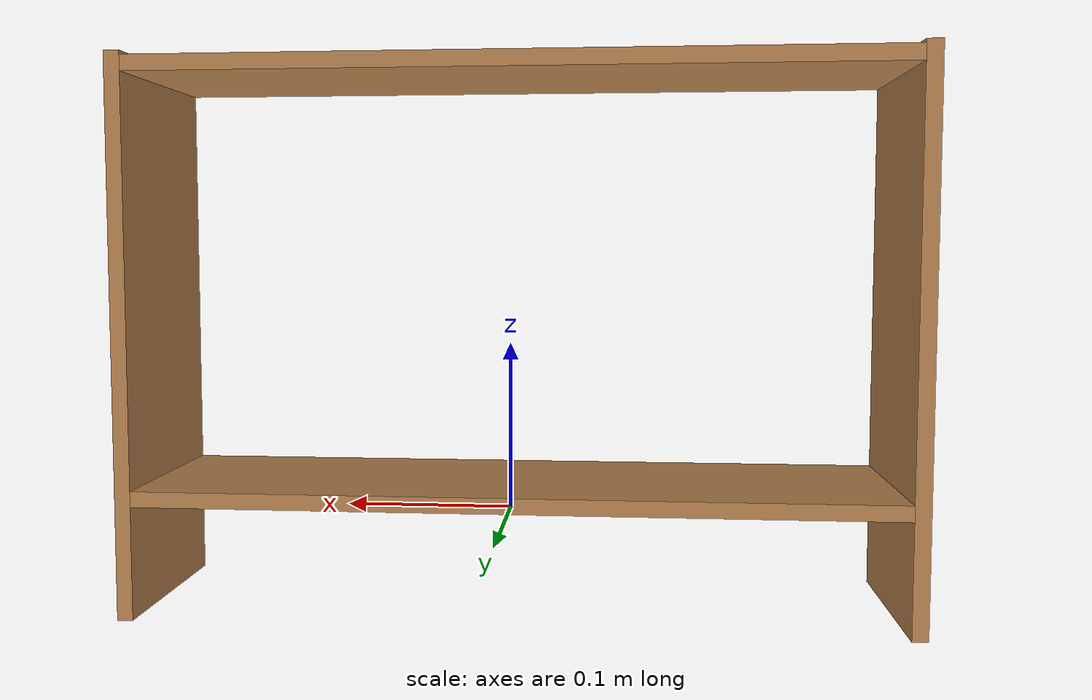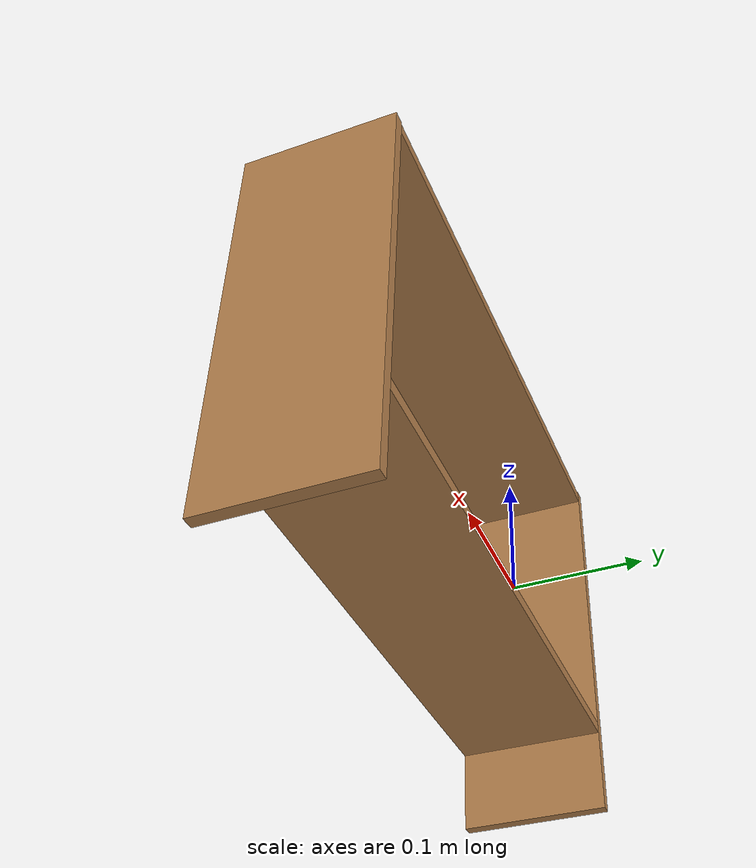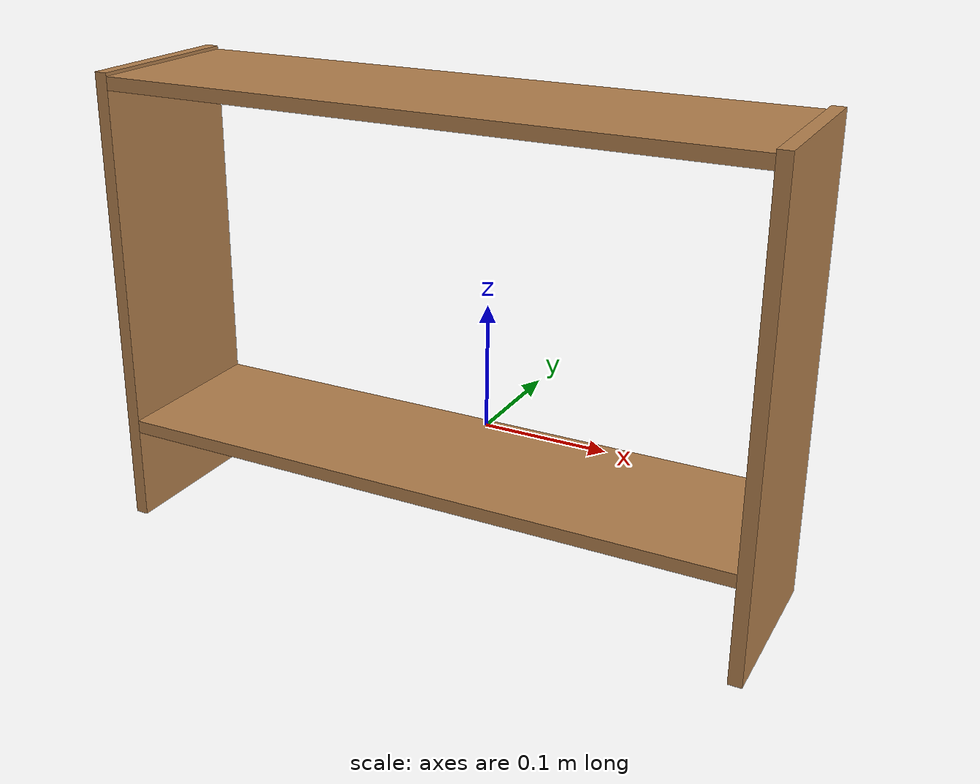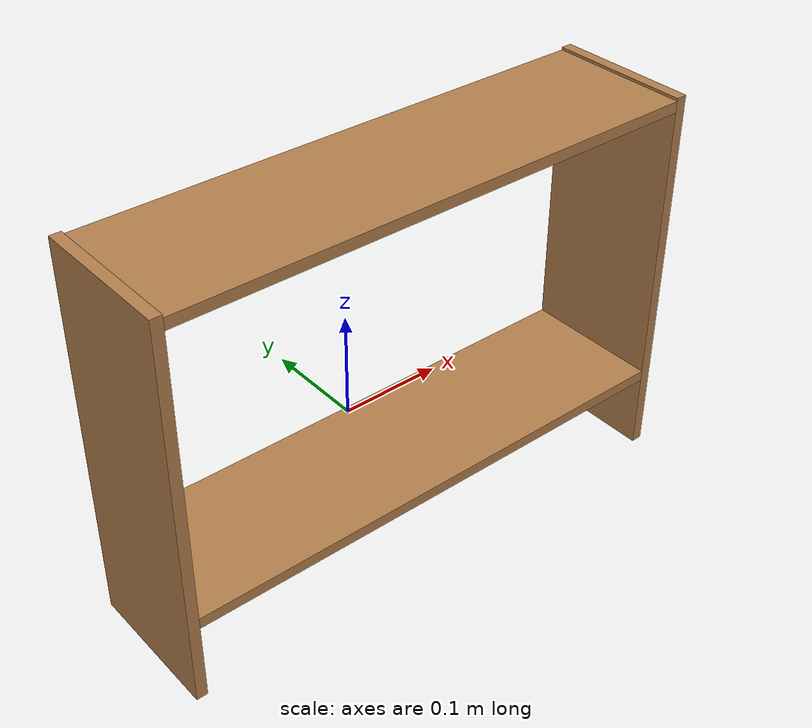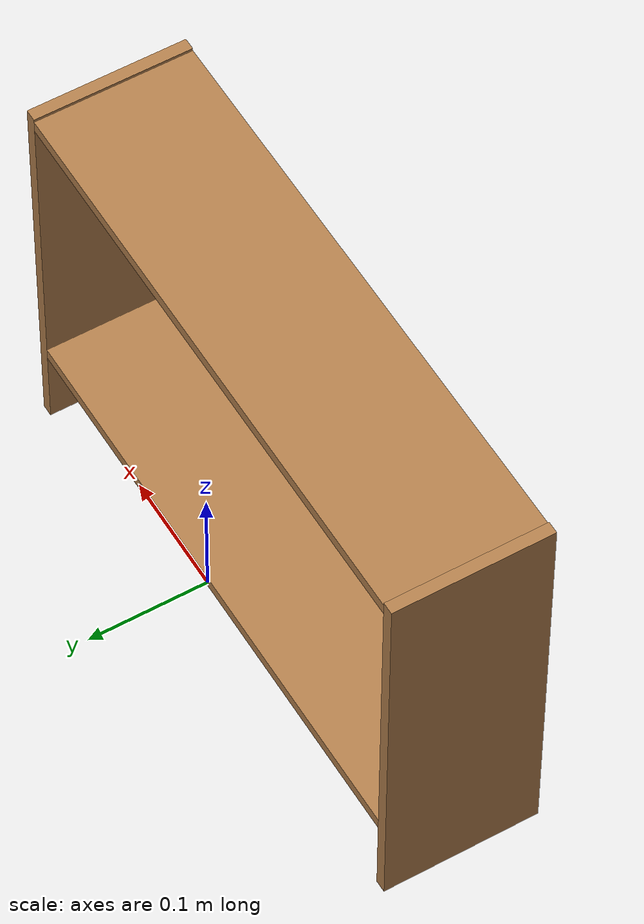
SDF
<?xml version="1.0" ?>
<sdf version="1.4">
  <model name="shelf">
    <static>true</static>
    <link name="link">
      <inertial>
        <mass>1.0</mass>
      </inertial>

      <collision name="left_side">
        <pose>0.245 -0.065 0.1 0 0 0</pose>
        <geometry>
          <box>
            <size>0.01 0.13 0.355</size>
          </box>
        </geometry>
      </collision>
      <visual name="visual2">
        <pose>0.245 -0.065 0.1 0 0 0</pose>
        <geometry>
          <box>
            <size>0.01 0.13 0.355</size>
          </box>
        </geometry>
        <material>
          <script>
            <uri>file://media/materials/scripts/gazebo.material</uri>
            <name>Gazebo/Wood</name>
          </script>
        </material>
      </visual>

      <collision name="right_side">
        <pose>-0.245 -0.065 0.1 0 0 0</pose>
        <geometry>
          <box>
            <size>0.01 0.13 0.355</size>
          </box>
        </geometry>
      </collision>
      <visual name="visual3">
        <pose>-0.245 -0.065 0.1 0 0 0</pose>
        <geometry>
          <box>
            <size>0.01 0.13 0.355</size>
          </box>
        </geometry>
        <material>
          <script>
            <uri>file://media/materials/scripts/gazebo.material</uri>
            <name>Gazebo/Wood</name>
          </script>
        </material>
      </visual>

      <collision name="bottom">
        <pose>0 -0.065 0 0 0 0</pose>
        <geometry>
          <box>
            <size>0.48 0.13 0.01</size>
          </box>
        </geometry>
      </collision>
      <visual name="visual4">
        <pose>0 -0.065 0 0 0 0</pose>
        <geometry>
          <box>
            <size>0.48 0.13 0.01</size>
          </box>
        </geometry>
        <material>
          <script>
            <uri>file://media/materials/scripts/gazebo.material</uri>
            <name>Gazebo/Wood</name>
          </script>
        </material>
      </visual>

      <collision name="top">
        <pose>0 -0.065 0.27 0 0 0</pose>
        <geometry>
          <box>
            <size>0.48 0.13 0.01</size>
          </box>
        </geometry>
      </collision>
      <visual name="visual5">
        <pose>0 -0.065 0.27 0 0 0</pose>
        <geometry>
          <box>
            <size>0.48 0.13 0.01</size>
          </box>
        </geometry>
        <material>
          <script>
            <uri>file://media/materials/scripts/gazebo.material</uri>
            <name>Gazebo/Wood</name>
          </script>
        </material>
      </visual>
    </link>
  </model>
</sdf>
